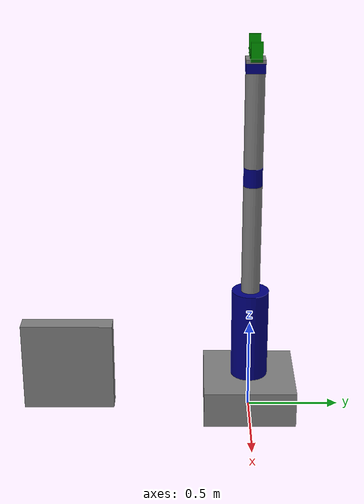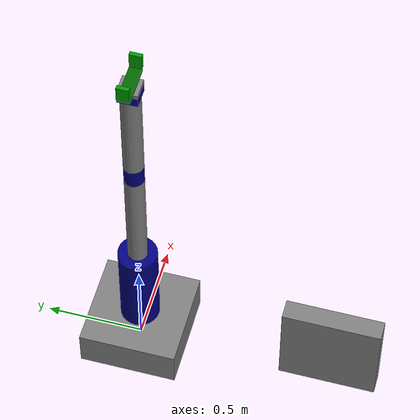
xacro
<?xml version="1.0"?>
<robot name="robot_arm" xmlns:xacro="http://www.ros.org/wiki/xacro">

    <xacro:include filename="colors.xacro"></xacro:include>
    <xacro:include filename="links_macro.xacro"></xacro:include>

    <xacro:include filename="arm.xacro"></xacro:include>
    <xacro:include filename="gripper.xacro"></xacro:include>

    <xacro:include filename="object.xacro"></xacro:include>

    <xacro:include filename="robot_arm.ros2_control.xacro"></xacro:include>
    <xacro:include filename="robot_arm_gazebo.xacro"></xacro:include>

    <!-- Fixed joint attaching the gripper base to the tool link -->
    <joint name="tool_gripper_joint" type="fixed">
        <parent link="tool_link"></parent>
        <child link="gripper_base_link"></child>
        <origin xyz="0 0 0" rpy="0 0 0"></origin>
    </joint>

    <joint name="object_joint" type="fixed">
        <parent link="base_link"></parent>
        <child link="object"></child>
        <origin xyz="0 -1.0 0.25" rpy="0 0 0"></origin>
    </joint>

</robot>

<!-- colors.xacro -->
<robot xmlns:xacro="http://www.ros.org/wiki/xacro">
    <material name="grey">
        <color rgba="0.5 0.5 0.5 1"></color>
    </material>

    <material name="blue">
        <color rgba="0 0 0.5 1"></color>
    </material>

    <material name="dark_green">
        <color rgba="0 0.4 0 1"></color>
    </material>

    <material name="light_green">
        <color rgba="0 0.6 0 1"></color>
    </material>

</robot>

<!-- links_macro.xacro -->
<robot xmlns:xacro="http://www.ros.org/wiki/xacro">

    <xacro:property name="default_density" value="5.0"></xacro:property>

    <xacro:macro name="box_link" params="name length width height origin_xyz material">
        <xacro:property name="mass" value="${default_density * length * width * height}"></xacro:property>
        <xacro:property name="ixx" value="${mass * (width*width + height*height) / 12.0}"></xacro:property>
        <xacro:property name="iyy" value="${mass * (length*length + height*height) / 12.0}"></xacro:property>
        <xacro:property name="izz" value="${mass * (length*length + width*width) / 12.0}"></xacro:property>
        <link name="${name}">
            <visual>
                <geometry>
                    <box size="${length} ${width} ${height}"></box>
                </geometry>
                <origin xyz="${origin_xyz}" rpy="0 0 0"></origin>
                <material name="${material}"></material>
            </visual>
            <collision>
                <geometry>
                    <box size="${length} ${width} ${height}"></box>
                </geometry>
                <origin xyz="${origin_xyz}" rpy="0 0 0"></origin>
            </collision>
            <inertial>
                <origin xyz="${origin_xyz}" rpy="0 0 0"></origin>
                <mass value="${mass}"></mass>
                <inertia ixx="${ixx}" ixy="0.0" ixz="0.0" iyy="${iyy}" iyz="0.0" izz="${izz}"></inertia>
            </inertial>
        </link>
    </xacro:macro>

    <xacro:macro name="cylinder_link" params="name length radius origin_xyz material">
        <xacro:property name="mass" value="${default_density * 3.14159265359 * radius * radius * length}"></xacro:property>
        <xacro:property name="ixx" value="${mass * (3.0*radius*radius + length*length) / 12.0}"></xacro:property>
        <xacro:property name="iyy" value="${mass * (3.0*radius*radius + length*length) / 12.0}"></xacro:property>
        <xacro:property name="izz" value="${mass * radius * radius / 2.0}"></xacro:property>
        <link name="${name}">
            <visual>
                <geometry>
                    <cylinder length="${length}" radius="${radius}"></cylinder>
                </geometry>
                <origin xyz="${origin_xyz}" rpy="0 0 0"></origin>
                <material name="${material}"></material>
            </visual>
            <!-- use box instead of cylinder for simpler collision computations -->
            <collision>
                <geometry>
                    <box size="${radius*2.0} ${radius*2.0} ${length}"></box>
                </geometry>
                <origin xyz="${origin_xyz}" rpy="0 0 0"></origin>
            </collision>
            <inertial>
                <origin xyz="${origin_xyz}" rpy="0 0 0"></origin>
                <mass value="${mass}"></mass>
                <inertia ixx="${ixx}" ixy="0.0" ixz="0.0" iyy="${iyy}" iyz="0.0" izz="${izz}"></inertia>
            </inertial>

        </link>
    </xacro:macro>

</robot>

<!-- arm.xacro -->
<robot xmlns:xacro="http://www.ros.org/wiki/xacro">

    <link name="world"></link>
    <link name="base_footprint"></link>

    <xacro:property name="base_link_length" value="0.5"></xacro:property>
    <xacro:property name="base_link_width" value="0.5"></xacro:property>
    <xacro:property name="base_link_height" value="0.2"></xacro:property>
    <xacro:box_link name="base_link" length="${base_link_length}" width="${base_link_width}" height="${base_link_height}"
                    origin_xyz="0 0 ${base_link_height/2.0}" material="grey"></xacro:box_link>

    <xacro:property name="shoulder_link_length" value="0.5"></xacro:property>
    <xacro:property name="shoulder_link_radius" value="0.1"></xacro:property>
    <xacro:cylinder_link name="shoulder_link" length="${shoulder_link_length}" radius="${shoulder_link_radius}"
                        origin_xyz="0 0 ${shoulder_link_length/2.0}" material="blue"></xacro:cylinder_link>

    <xacro:property name="arm_link_length" value="0.6"></xacro:property>
    <xacro:property name="arm_link_radius" value="0.05"></xacro:property>
    <xacro:cylinder_link name="arm_link" length="${arm_link_length}" radius="${arm_link_radius}"
                        origin_xyz="0 0 ${arm_link_length/2.0}" material="grey"></xacro:cylinder_link>

    <xacro:property name="elbow_link_length" value="0.1"></xacro:property>
    <xacro:property name="elbow_link_radius" value="0.05"></xacro:property>
    <xacro:cylinder_link name="elbow_link" length="${elbow_link_length}" radius="${elbow_link_radius}"
                            origin_xyz="0 0 ${elbow_link_length/2.0}" material="blue"></xacro:cylinder_link>

    <xacro:property name="forearm_link_length" value="0.5"></xacro:property>
    <xacro:property name="forearm_link_radius" value="0.05"></xacro:property>
    <xacro:cylinder_link name="forearm_link" length="${forearm_link_length}" radius="${forearm_link_radius}"
                            origin_xyz="0 0 ${forearm_link_length/2.0}" material="grey"></xacro:cylinder_link>

    <xacro:property name="wrist_link_length" value="0.1"></xacro:property>
    <xacro:property name="wrist_link_width" value="0.1"></xacro:property>
    <xacro:property name="wrist_link_height" value="0.05"></xacro:property>
    <xacro:box_link name="wrist_link" length="${wrist_link_length}" width="${wrist_link_width}" height="${wrist_link_height}"
                    origin_xyz="0 0 ${wrist_link_height/2.0}" material="blue"></xacro:box_link>

    <xacro:property name="hand_link_length" value="0.1"></xacro:property>
    <xacro:property name="hand_link_width" value="0.1"></xacro:property>
    <xacro:property name="hand_link_height" value="0.02"></xacro:property>
    <xacro:box_link name="hand_link" length="${hand_link_length}" width="${hand_link_width}" height="${hand_link_height}"
                    origin_xyz="0 0 ${hand_link_height/2.0}" material="grey"></xacro:box_link>

    <link name="tool_link">
        <inertial>
            <origin xyz="0 0 0" rpy="0 0 0"></origin>
            <mass value="0.001"></mass>
            <inertia ixx="1e-6" ixy="0.0" ixz="0.0" iyy="1e-6" iyz="0.0" izz="1e-6"></inertia>
        </inertial>
    </link>

    <!-- Joints -->

    <!-- Anchor base to world so arm doesn't fall in Gazebo -->
    <joint name="world_base_footprint_joint" type="fixed">
        <parent link="world"></parent>
        <child link="base_footprint"></child>
        <origin xyz="0 0 0" rpy="0 0 0"></origin>
    </joint>

    <!-- Virtual joint to connect the robot to the world frame -->
    <joint name="base_footprint_joint" type="fixed">
        <parent link="base_footprint"></parent>
        <child link="base_link"></child>
        <origin xyz="0 0 0" rpy="0 0 0"></origin>
        <dynamics friction="2.0" damping="5.0"/>
    </joint>

    <joint name="base_shoulder_joint" type="revolute">
        <parent link="base_link"></parent>
        <child link="shoulder_link"></child>
        <origin xyz="0 0 ${base_link_height}" rpy="0 0 0"></origin>
        <axis xyz="0 0 1"></axis>
        <limit effort="100.0" velocity="1.0" lower="-3.14" upper="3.14"></limit>
        <dynamics friction="2.0" damping="5.0"/>
    </joint>

    <joint name="shoulder_arm_joint" type="revolute">
        <parent link="shoulder_link"></parent>
        <child link="arm_link"></child>
        <origin xyz="0 0 ${shoulder_link_length}" rpy="0 0 0"></origin>
        <axis xyz="0 1 0"></axis>
        <limit effort="100.0" velocity="1.0" lower="0.0" upper="2.5"></limit>
        <dynamics friction="2.0" damping="5.0"/>
    </joint>

    <joint name="arm_elbow_joint" type="revolute">
        <parent link="arm_link"></parent>
        <child link="elbow_link"></child>
        <origin xyz="0 0 ${arm_link_length}" rpy="0 0 0"></origin>
        <axis xyz="0 1 0"></axis>
        <limit effort="100.0" velocity="1.0" lower="0.0" upper="2.5"></limit>
        <dynamics friction="2.0" damping="5.0"/>
    </joint>

    <joint name="elbow_forearm_joint" type="revolute">
        <parent link="elbow_link"></parent>
        <child link="forearm_link"></child>
        <origin xyz="0 0 ${elbow_link_length}" rpy="0 0 0"></origin>
        <axis xyz="0 0 1"></axis>
        <limit effort="100.0" velocity="1.0" lower="-3.14" upper="3.14"></limit>
        <dynamics friction="2.0" damping="5.0"/>

    </joint>

    <joint name="forearm_wrist_joint" type="revolute">
        <parent link="forearm_link"></parent>
        <child link="wrist_link"></child>
        <origin xyz="0 0 ${forearm_link_length}" rpy="0 0 0"></origin>
        <axis xyz="0 1 0"></axis>
        <limit effort="100.0" velocity="1.0" lower="-1.57" upper="1.57"></limit>
        <dynamics friction="2.0" damping="5.0"/>
    </joint>

    <joint name="wrist_hand_joint" type="continuous">
        <parent link="wrist_link"></parent>
        <child link="hand_link"></child>
        <origin xyz="0 0 ${wrist_link_height}" rpy="0 0 0"></origin>
        <axis xyz="0 0 1"></axis>
        <limit effort="100.0" velocity="1.0"/>
    </joint>

    <joint name="hand_tool_joint" type="fixed">
        <parent link="hand_link"></parent>
        <child link="tool_link"></child>
        <origin xyz="0 0 ${hand_link_height}"></origin>
    </joint>

</robot>

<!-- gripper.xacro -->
<robot xmlns:xacro="http://www.ros.org/wiki/xacro">

    <xacro:property name="gripper_base_link_length" value="0.2"></xacro:property>
    <xacro:property name="gripper_base_link_width" value="0.06"></xacro:property>
    <xacro:property name="gripper_base_link_height" value="0.02"></xacro:property>
    <xacro:box_link name="gripper_base_link" length="${gripper_base_link_length}" width="${gripper_base_link_width}" height="${gripper_base_link_height}"
                    origin_xyz="0 0 ${gripper_base_link_height/2.0}" material="dark_green"></xacro:box_link>

    <xacro:property name="finger_link_length" value="0.02"></xacro:property>
    <xacro:property name="finger_link_width" value="0.06"></xacro:property>
    <xacro:property name="finger_link_height" value="0.08"></xacro:property>

    <xacro:box_link name="finger_link" length="${finger_link_length}" width="${finger_link_width}" height="${finger_link_height}"
                    origin_xyz="0 0 ${finger_link_height/2.0}" material="light_green"></xacro:box_link>

    <xacro:box_link name="right_finger_link" length="${finger_link_length}" width="${finger_link_width}" height="${finger_link_height}"
                    origin_xyz="0 0 ${finger_link_height/2.0}" material="light_green"></xacro:box_link>

    <joint name="gripper_left_finger_joint" type="prismatic">
        <parent link="gripper_base_link"></parent>
        <child link="finger_link"></child>
        <origin xyz="${-gripper_base_link_length/2.0} 0 ${gripper_base_link_height}" rpy="0 0 0"></origin>
        <axis xyz="1 0 0 "></axis>
        <limit effort="100.0" velocity="1.0" lower="0.0" upper="${0.1 - finger_link_width/3.0}"></limit>
    </joint>

    <joint name="gripper_right_finger_joint" type="prismatic">
        <parent link="gripper_base_link"></parent>
        <child link="right_finger_link"></child>
        <origin xyz="${gripper_base_link_length/2.0} 0 ${gripper_base_link_height}" rpy="0 0 0"></origin>
        <axis xyz="1 0 0 "></axis>
        <limit effort="100.0" velocity="1.0" lower="-${0.1 - finger_link_width/3.0}" upper="0.0"></limit>
    </joint>

</robot>

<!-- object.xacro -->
<robot xmlns:xacro="http://www.ros.org/wiki/xacro">

    <xacro:property name="object_length" value="0.5"></xacro:property>
    <xacro:property name="object_width" value="0.1"></xacro:property>
    <xacro:property name="object_height" value="0.5"></xacro:property>
    <xacro:property name="object_density" value="5.0"></xacro:property>
    <xacro:property name="object_mass" value="${object_density * object_length * object_width * object_height}"></xacro:property>
    <xacro:property name="object_ixx" value="${object_mass * (object_width*object_width + object_height*object_height) / 12.0}"></xacro:property>
    <xacro:property name="object_iyy" value="${object_mass * (object_length*object_length + object_height*object_height) / 12.0}"></xacro:property>
    <xacro:property name="object_izz" value="${object_mass * (object_length*object_length + object_width*object_width) / 12.0}"></xacro:property>

    <link name="object">
            <inertial>
                <origin xyz="0 0 0" rpy="0 0 1.57"></origin>
                <mass value="${object_mass}"></mass>
                <inertia ixx="${object_ixx}" ixy="0.0" ixz="0.0" iyy="${object_iyy}" iyz="0.0" izz="${object_izz}"></inertia>
            </inertial>
            <visual>
                <geometry>
                    <box size="${object_length} ${object_width} ${object_height}"></box>
                </geometry>
                <origin xyz="0 0 0" rpy="0 0 1.57"></origin>
                <material name="grey"></material>
            </visual>
            <collision>
                <geometry>
                    <box size="${object_length} ${object_width} ${object_height}"></box>
                </geometry>
                <origin xyz="0 0 0" rpy="0 0 1.57"></origin>
            </collision>
        </link>

</robot>
